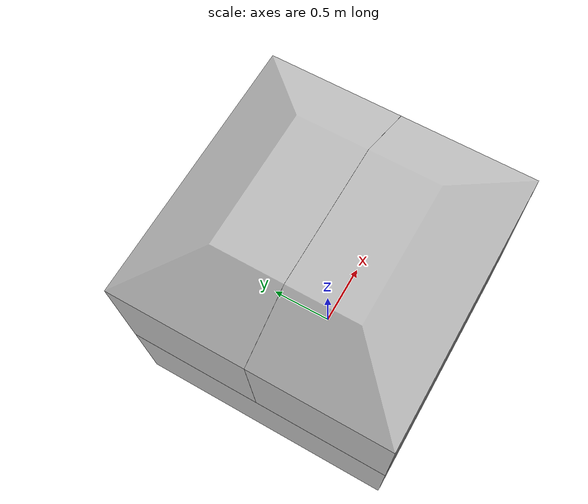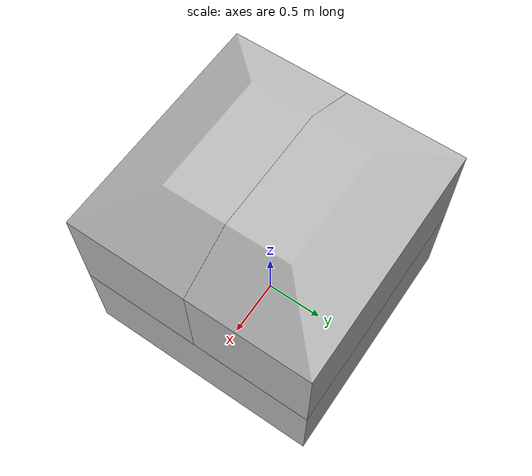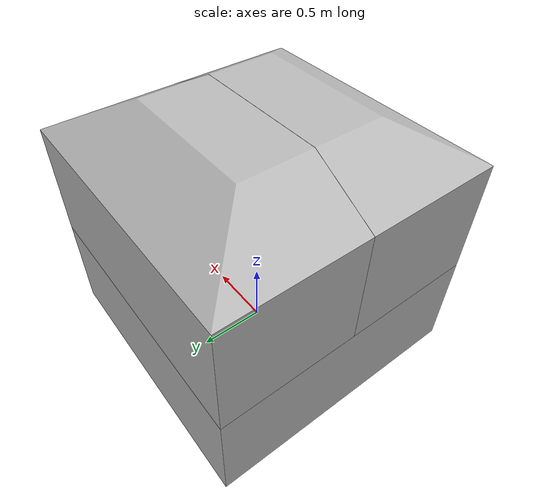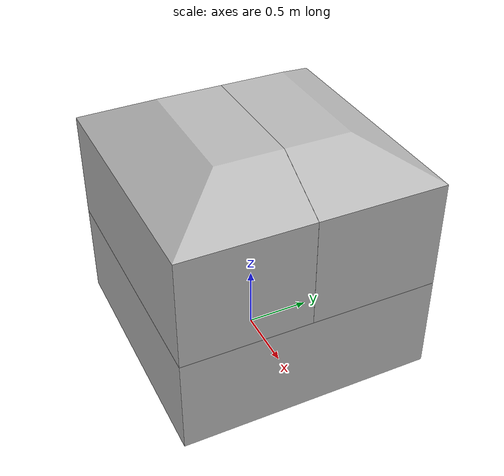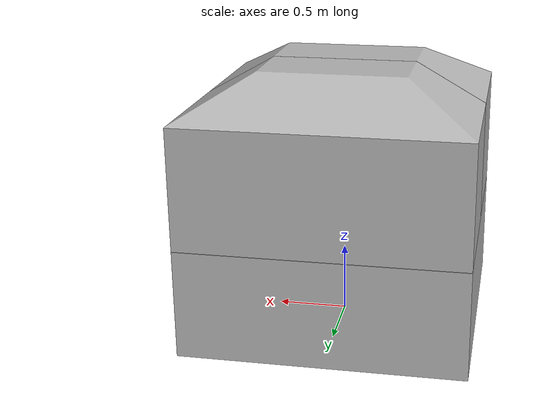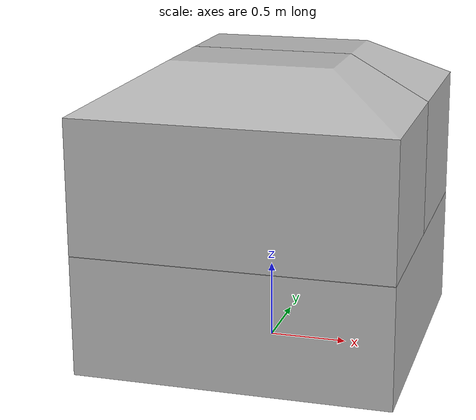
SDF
<?xml version="1.0" ?>
<sdf version="1.7">
  <model name="dock_station">
    <static>false</static>

    <!-- Base -->
    <link name="base">
      <visual name="base_visual">
        <geometry>
          <mesh><uri>model://dock_station/meshes/dock_base.stl</uri></mesh>
        </geometry>
      </visual>
      <collision name="base_collision">
        <geometry>
          <mesh><uri>model://dock_station/meshes/dock_base.stl</uri></mesh>
        </geometry>
      </collision>
    </link>

    <!-- Left Cover -->
    <link name="top_left">
      <visual name="top_left_visual">
        <geometry>
          <mesh><uri>model://dock_station/meshes/dock_top_left.stl</uri></mesh>
        </geometry>
      </visual>
      <collision name="top_left_collision">
        <geometry>
          <mesh><uri>model://dock_station/meshes/dock_top_left.stl</uri></mesh>
        </geometry>
      </collision>
    </link>

    <!-- Right Cover -->
    <link name="top_right">
      <visual name="top_right_visual">
        <geometry>
          <mesh><uri>model://dock_station/meshes/dock_top_right.stl</uri></mesh>
        </geometry>
      </visual>
      <collision name="top_right_collision">
        <geometry>
          <mesh><uri>model://dock_station/meshes/dock_top_right.stl</uri></mesh>
        </geometry>
      </collision>
    </link>

    <!-- Left cover linear joint -->
    <joint name="left_slider" type="prismatic">
      <parent>base</parent>
      <child>top_left</child>
      <axis>
        <xyz>0 1 0</xyz> <!-- slide along Y -->
        <limit>
          <lower>0</lower>
          <upper>0.2</upper> <!-- move 20cm, adjust if needed -->
        </limit>
      </axis>
    </joint>

    <!-- Right cover linear joint -->
    <joint name="right_slider" type="prismatic">
      <parent>base</parent>
      <child>top_right</child>
      <axis>
        <xyz>0 -1 0</xyz> <!-- slide along Y opposite -->
        <limit>
          <lower>0</lower>
          <upper>0.2</upper>
        </limit>
      </axis>
    </joint>

  </model>
</sdf>
